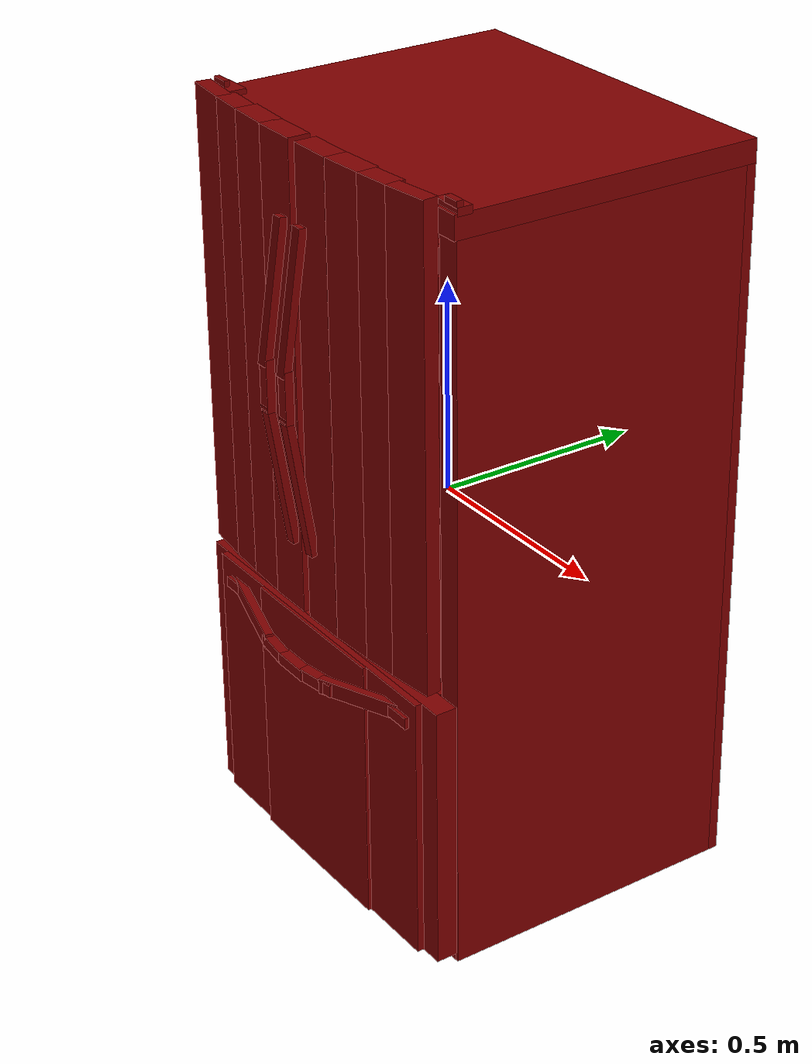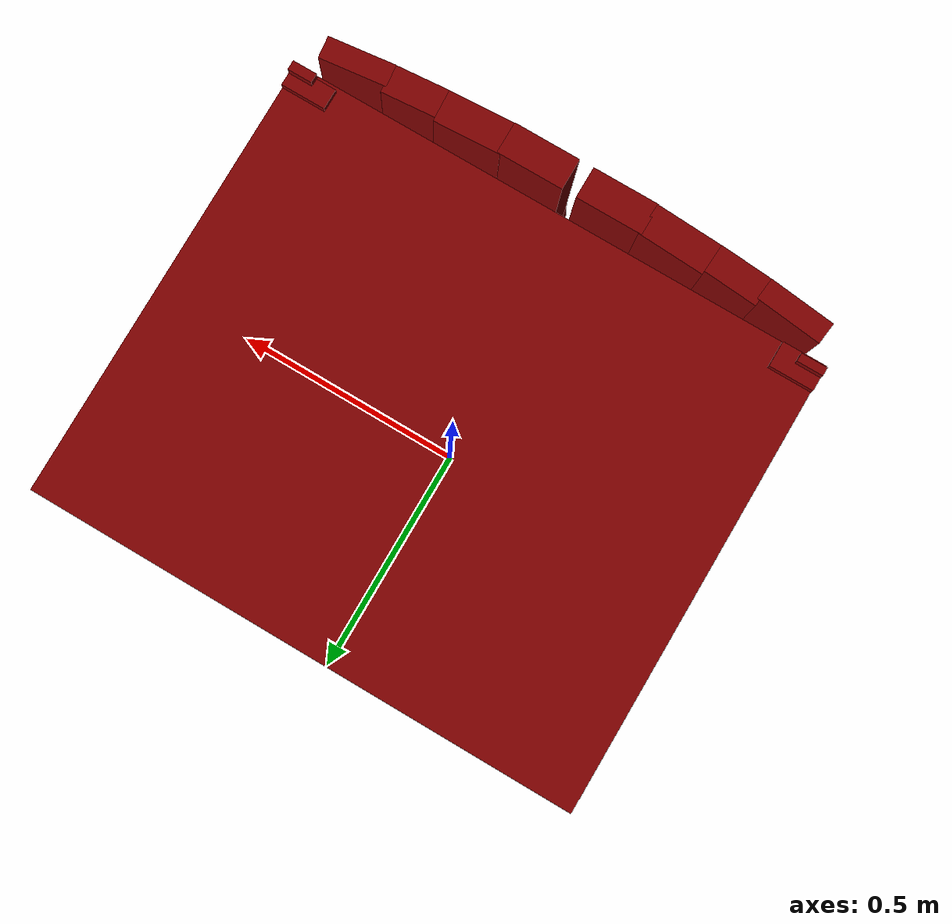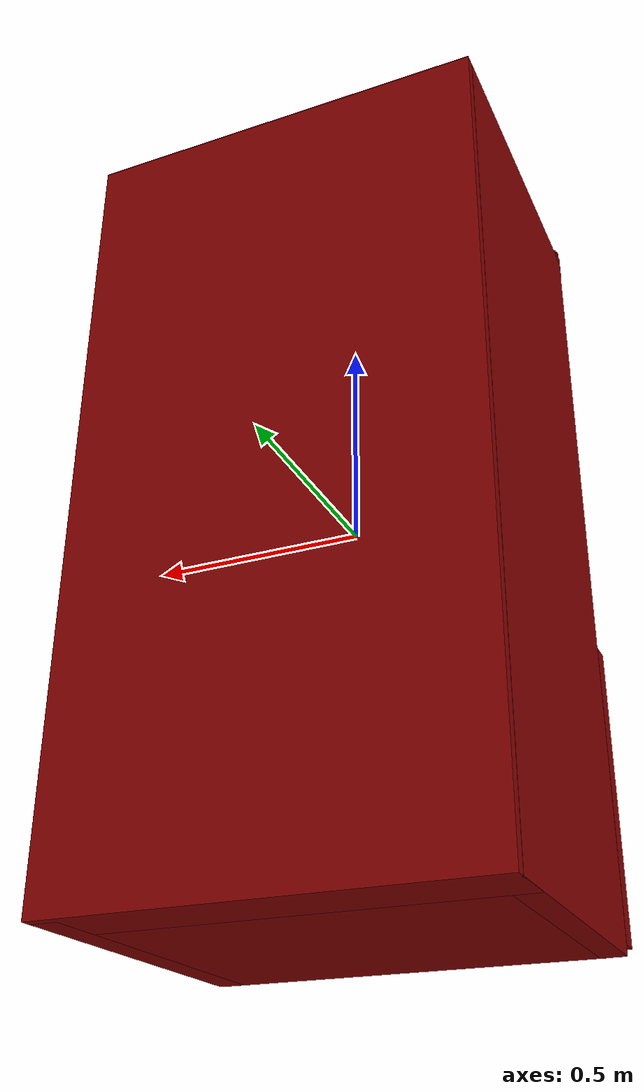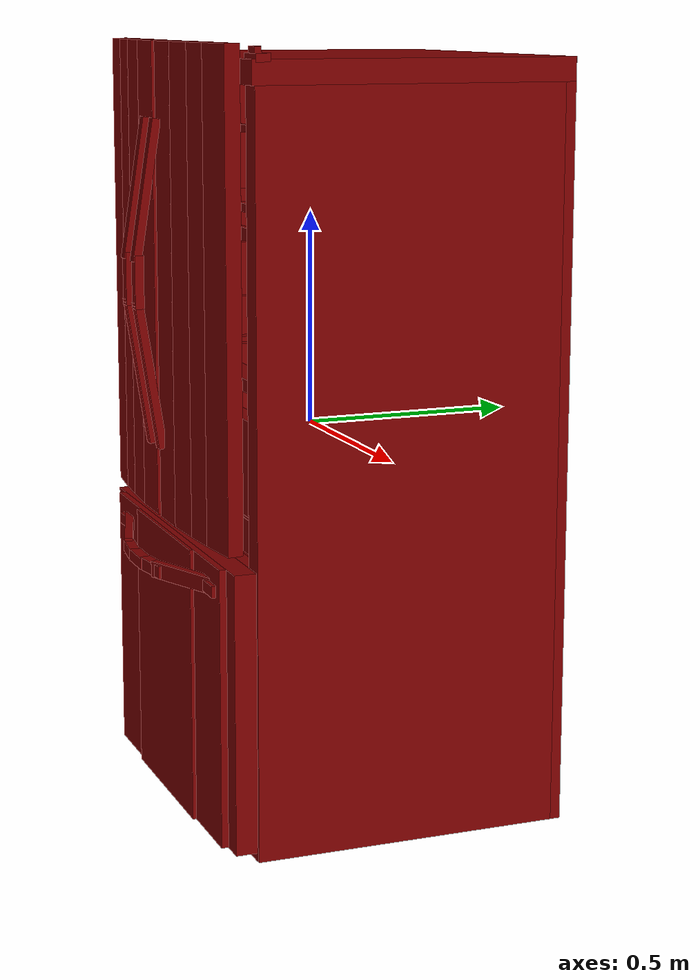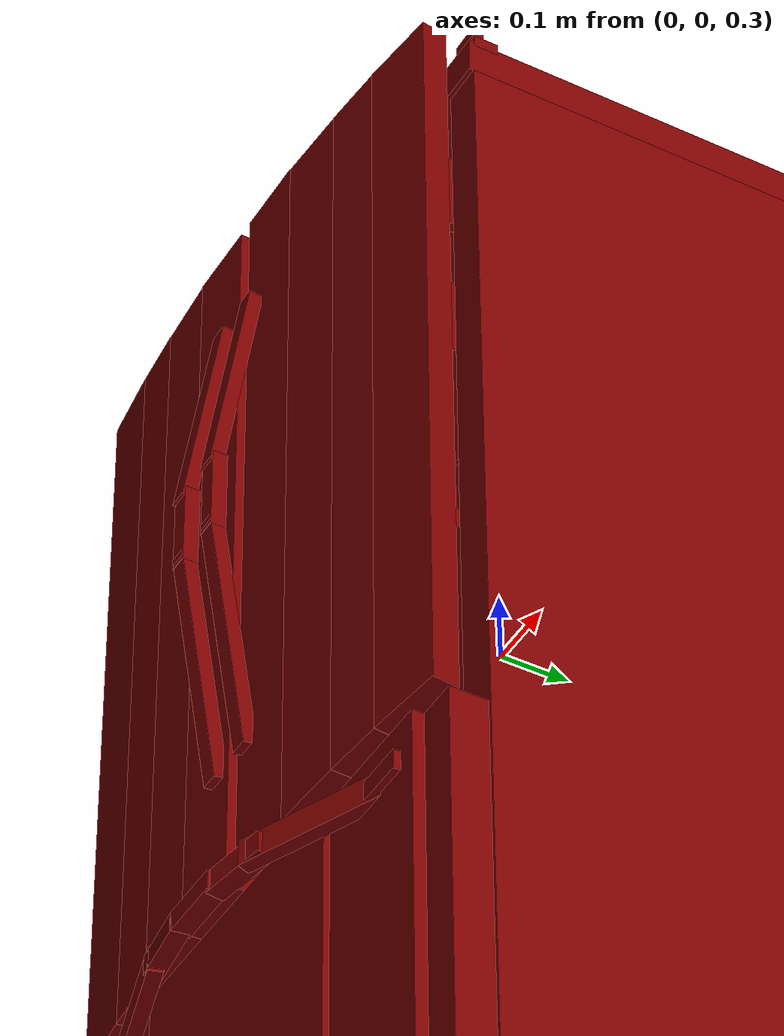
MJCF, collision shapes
<mujoco model="model">
  <compiler angle="radian"/>
  <asset>
    <mesh file="visuals/Body001.obj" name="Body001_vis"/>
    <mesh file="visuals/Body001_Clear.obj" name="Body001_Clear_vis"/>
    <mesh file="visuals/Door001.obj" name="Door001_vis"/>
    <mesh file="visuals/Door001_Clear.obj" name="Door001_Clear_vis"/>
    <mesh file="visuals/Door002.obj" name="Door002_vis"/>
    <mesh file="visuals/Door002_Clear.obj" name="Door002_Clear_vis"/>
    <mesh file="visuals/Drawer001.obj" name="Drawer001_vis"/>
    <mesh file="visuals/Drawer002.obj" name="Drawer002_vis"/>
    <texture file="visuals/T_BC001.png" name="Body001_material" type="2d"/>
    <material name="Body001_material" rgba="1 1 1 1.0" texture="Body001_material" shininess="0.5" specular="0.5"/>
    <texture file="visuals/T_BC001.png" name="Body001_Clear_material" type="2d"/>
    <material name="Body001_Clear_material" rgba="1 1 1 0.4285714030265808" texture="Body001_Clear_material" shininess="0.2512328028678894" specular="0.3103448502657381"/>
    <texture file="visuals/T_BC001.png" name="Door001_material" type="2d"/>
    <material name="Door001_material" rgba="1 1 1 1.0" texture="Door001_material" shininess="0.5" specular="0.5"/>
    <texture file="visuals/T_BC001.png" name="Door001_Clear_material" type="2d"/>
    <material name="Door001_Clear_material" rgba="1 1 1 0.4285714030265808" texture="Door001_Clear_material" shininess="0.2512328028678894" specular="0.3103448502657381"/>
    <texture file="visuals/T_BC001.png" name="Door002_material" type="2d"/>
    <material name="Door002_material" rgba="1 1 1 1.0" texture="Door002_material" shininess="0.5" specular="0.5"/>
    <texture file="visuals/T_BC001.png" name="Door002_Clear_material" type="2d"/>
    <material name="Door002_Clear_material" rgba="1 1 1 0.4285714030265808" texture="Door002_Clear_material" shininess="0.2512328028678894" specular="0.3103448502657381"/>
    <texture file="visuals/T_BC001.png" name="Drawer001_material" type="2d"/>
    <material name="Drawer001_material" rgba="1 1 1 1.0" texture="Drawer001_material" shininess="0.5" specular="0.5"/>
    <texture file="visuals/T_BC001.png" name="Drawer002_material" type="2d"/>
    <material name="Drawer002_material" rgba="1 1 1 1.0" texture="Drawer002_material" shininess="0.665778249502182" specular="0.3103448502657381"/>
  </asset>
  <default>
    <default class="visual">
      <geom conaffinity="0" contype="0" group="1" type="mesh"/>
    </default>
    <default class="collision">
      <geom group="0" rgba="0.5 0 0 0.5"/>
    </default>
    <default class="spawn">
      <geom group="0" rgba="1 1 1 0.5" contype="0" conaffinity="0"/>
      <site group="0" rgba="1 1 1 0.5"/>
    </default>
    <default class="region">
      <geom group="1" conaffinity="0" contype="0" rgba="0 1 0 0"/>
    </default>
  </default>
  <worldbody>
    <body>
      <body name="object">
        <geom mesh="Body001_vis" type="mesh" solimp="0.998 0.998 0.001" solref="0.001 1" density="100" friction="0.95 0.3 0.1" class="visual" material="Body001_material"/>
        <geom class="collision" type="box" pos="0.393358 0.157703 0.468812" size="0.010351382195949554 0.16923801600933075 0.010351382195949554" quat="1.0 0.0 0.0 0.0"/>
        <geom class="collision" type="box" pos="-0.398244 0.157703 0.468811" size="0.010351382195949554 0.16923774778842926 0.010351382195949554" quat="1.0 0.0 0.0 0.0"/>
        <geom class="collision" type="box" pos="0.380663 0.028544 -0.002299" size="0.01822734624147415 0.2875395715236664 0.1552017778158188" quat="1.0 0.0 0.0 0.0"/>
        <geom class="collision" type="box" pos="-0.329893 0.157703 0.659218" size="0.07471196353435516 0.16921715438365936 0.1444089263677597" quat="1.0 0.0 0.0 0.0"/>
        <geom class="collision" type="box" pos="-0.419443 -0.276386 0.865173" size="0.03675774484872818 0.021100489422678947 0.009076273068785667" quat="1.0 0.0 0.0 0.0"/>
        <geom class="collision" type="box" pos="-0.434253 -0.284863 0.881066" size="0.021508796140551567 0.006980355363339186 0.007224912289530039" quat="1.0 0.0 0.0 0.0"/>
        <geom class="collision" type="box" pos="0.417883 -0.274699 0.865173" size="0.03708718717098236 0.017112594097852707 0.009076273068785667" quat="1.0 0.0 0.0 0.0"/>
        <geom class="collision" type="box" pos="0.434580 -0.286291 0.881066" size="0.02038951776921749 0.007852268405258656 0.007224912289530039" quat="1.0 0.0 0.0 0.0"/>
        <geom class="collision" type="box" pos="0.011870 0.065716 -0.878961" size="0.43579548597335815 0.36065641045570374 0.016081569716334343" quat="1.0 0.0 0.0 0.0"/>
        <geom class="collision" type="box" pos="-0.000409 0.075182 0.835169" size="0.4552483856678009 0.3750923275947571 0.026853106915950775" quat="1.0 0.0 0.0 0.0"/>
        <geom class="collision" type="box" pos="0.011870 0.088161 -0.198455" size="0.43579548597335815 0.33821165561676025 0.04111609607934952" quat="1.0 0.0 0.0 0.0"/>
        <geom class="collision" type="box" pos="-0.000466 0.378528 -0.017953" size="0.4552538990974426 0.07208621501922607 0.8770899772644043" quat="1.0 0.0 0.0 0.0"/>
        <geom class="collision" type="box" pos="0.425648 0.066225 -0.017304" size="0.029170408844947815 0.36014673113822937 0.8777389526367188" quat="1.0 0.0 0.0 0.0"/>
        <geom class="collision" type="box" pos="-0.429102 0.066742 -0.017304" size="0.02709752880036831 0.35963016748428345 0.8777389526367188" quat="1.0 0.0 0.0 0.0"/>
        <geom class="collision" type="box" pos="-0.386428 0.028544 -0.002299" size="0.01822734624147415 0.2875441312789917 0.1552017778158188" quat="1.0 0.0 0.0 0.0"/>
        <body name="Body001_Clear">
          <geom mesh="Body001_Clear_vis" type="mesh" solimp="0.998 0.998 0.001" solref="0.001 1" density="100" friction="0.95 0.3 0.1" class="visual" material="Body001_Clear_material"/>
          <geom class="collision" type="box" pos="-0.002334 0.168107 0.165342" size="0.3946961760520935 0.1715097725391388 0.010541661642491817" quat="1.0 0.0 0.0 0.0"/>
          <geom class="collision" type="box" pos="-0.002334 0.144625 0.480483" size="0.394689679145813 0.19498831033706665 0.010541456751525402" quat="1.0 0.0 0.0 0.0"/>
        </body>
        <body name="Door001">
          <joint axis="0.0 0.0 1.0" pos="0.414416 -0.337326 0.348534" limited="true" name="Door001_joint" range="0.0 1.5707963267948966" type="hinge" damping="1" frictionloss="1" armature=".01" stiffness="0.05"/>
          <geom mesh="Door001_vis" type="mesh" solimp="0.998 0.998 0.001" solref="0.001 1" density="100" friction="0.95 0.3 0.1" class="visual" material="Door001_material"/>
          <geom class="collision" type="box" pos="0.034764 -0.430729 0.357518" size="0.013605616986751556 0.010502235032618046 0.06091376394033432" quat="1.0 0.0 0.0 0.0"/>
          <geom class="collision" type="box" pos="0.034647 -0.410058 0.563384" size="0.1621246635913849 0.009660408832132816 0.013486583717167377" quat="0.7049456238746643 -0.05524139851331711 -0.7049456834793091 0.05524139851331711"/>
          <geom class="collision" type="box" pos="0.034627 -0.406367 0.140931" size="0.17270001769065857 0.009615455754101276 0.013239248655736446" quat="0.7050025463104248 0.05450979247689247 -0.7050026655197144 -0.05450979247689247"/>
          <geom class="collision" type="box" pos="0.065737 -0.351168 0.348108" size="0.055616579949855804 0.026242488995194435 0.5461543202400208" quat="1.0 0.0 0.0 0.0"/>
          <geom class="collision" type="box" pos="0.272572 -0.343936 0.348108" size="0.046391285955905914 0.02346332184970379 0.5461505651473999" quat="0.9991945028305054 0.0 0.0 0.04012879356741905"/>
          <geom class="collision" type="box" pos="0.172865 -0.347481 0.348108" size="0.055616192519664764 0.026242297142744064 0.546151340007782" quat="0.9996211528778076 0.0 0.0 0.027522815391421318"/>
          <geom class="collision" type="box" pos="0.370576 -0.339621 0.348108" size="0.05561620369553566 0.01822243444621563 0.546151340007782" quat="0.9983311295509338 0.0 0.0 0.05774902552366257"/>
          <body name="Door001_Clear">
            <geom mesh="Door001_Clear_vis" type="mesh" solimp="0.998 0.998 0.001" solref="0.001 1" density="100" friction="0.95 0.3 0.1" class="visual" material="Door001_Clear_material"/>
            <geom class="collision" type="box" pos="0.217419 -0.196417 0.423626" size="0.17540806531906128 0.007096310146152973 0.056383147835731506" quat="1.0 0.0 0.0 0.0"/>
            <geom class="collision" type="box" pos="0.047978 -0.253402 0.423566" size="0.007609921041876078 0.05415037274360657 0.056323058903217316" quat="1.0 0.0 0.0 0.0"/>
            <geom class="collision" type="box" pos="0.385024 -0.253401 0.423745" size="0.008308866992592812 0.05414876714348793 0.05650128424167633" quat="1.0 0.0 0.0 0.0"/>
            <geom class="collision" type="box" pos="0.216939 -0.251529 0.370284" size="0.1758868247270584 0.056109968572854996 0.005093726795166731" quat="1.0 0.0 0.0 0.0"/>
            <geom class="collision" type="box" pos="0.214233 -0.195037 0.651478" size="0.17222079634666443 0.005250070244073868 0.05818304046988487" quat="1.0 0.0 0.0 0.0"/>
            <geom class="collision" type="box" pos="0.047882 -0.254213 0.651478" size="0.007706339471042156 0.05394796282052994 0.05818280950188637" quat="1.0 0.0 0.0 0.0"/>
            <geom class="collision" type="box" pos="0.380341 -0.254213 0.651478" size="0.006518768146634102 0.05394766852259636 0.05818257853388786" quat="1.0 0.0 0.0 0.0"/>
            <geom class="collision" type="box" pos="0.213753 -0.254213 0.601259" size="0.17269954085350037 0.05394737049937248 0.007710074074566364" quat="1.0 0.0 0.0 0.0"/>
          </body>
        </body>
        <body name="Door002">
          <joint axis="0.0 0.0 -1.0" pos="-0.414856 -0.337479 0.348534" limited="true" name="Door002_joint" range="0.0 1.5707963267948966" type="hinge" damping="1" frictionloss="1" armature=".01" stiffness="0.05"/>
          <geom mesh="Door002_vis" type="mesh" solimp="0.998 0.998 0.001" solref="0.001 1" density="100" friction="0.95 0.3 0.1" class="visual" material="Door002_material"/>
          <geom class="collision" type="box" pos="-0.039493 -0.406367 0.140931" size="0.17270001769065857 0.009615455754101276 0.013239248655736446" quat="0.7050025463104248 0.05450979247689247 -0.7050026655197144 -0.05450979247689247"/>
          <geom class="collision" type="box" pos="-0.039473 -0.410058 0.563384" size="0.1621246635913849 0.009660408832132816 0.013486583717167377" quat="0.7049456238746643 -0.05524139851331711 -0.7049456834793091 0.05524139851331711"/>
          <geom class="collision" type="box" pos="-0.039356 -0.430729 0.357518" size="0.013605616986751556 0.010502469725906849 0.060914814472198486" quat="1.0 0.0 0.0 0.0"/>
          <geom class="collision" type="box" pos="-0.374019 -0.339621 0.348108" size="0.05561620369553566 0.01822243444621563 0.546151340007782" quat="-4.363844041677112e-08 -0.9983311295509338 0.05774901434779167 2.5242896661836767e-09"/>
          <geom class="collision" type="box" pos="-0.176309 -0.347481 0.348108" size="0.055616192519664764 0.026242297142744064 0.546151340007782" quat="-4.369483264099472e-08 -0.9996211528778076 0.02752281166613102 1.203060318033522e-09"/>
          <geom class="collision" type="box" pos="-0.276016 -0.343936 0.348108" size="0.046391285955905914 0.02346332184970379 0.5461505651473999" quat="-4.3676180894181016e-08 -0.9991945028305054 0.04012879356741905 1.75408532143706e-09"/>
          <geom class="collision" type="box" pos="-0.069181 -0.351168 0.348108" size="0.05561621114611626 0.026242351159453392 0.5461513996124268" quat="1.0 0.0 0.0 0.0"/>
          <body name="Door002_Clear">
            <geom mesh="Door002_Clear_vis" type="mesh" solimp="0.998 0.998 0.001" solref="0.001 1" density="100" friction="0.95 0.3 0.1" class="visual" material="Door002_Clear_material"/>
            <geom class="collision" type="box" pos="-0.302869 -0.228773 0.624898" size="0.09465435147285461 0.0052499896846711636 0.04907779395580292" quat="1.0 0.0 0.0 0.0"/>
            <geom class="collision" type="box" pos="-0.121150 -0.257943 0.579905" size="0.07614818960428238 0.05610897019505501 0.005093674641102552" quat="1.0 0.0 0.0 0.0"/>
            <geom class="collision" type="box" pos="-0.050227 -0.259815 0.625439" size="0.005737243220210075 0.05414760485291481 0.04857071116566658" quat="1.0 0.0 0.0 0.0"/>
            <geom class="collision" type="box" pos="-0.192696 -0.259816 0.625260" size="0.005291529931128025 0.05414901301264763 0.04839230701327324" quat="1.0 0.0 0.0 0.0"/>
            <geom class="collision" type="box" pos="-0.120670 -0.202831 0.625320" size="0.07566859573125839 0.0070961154997348785 0.04845228046178818" quat="1.0 0.0 0.0 0.0"/>
            <geom class="collision" type="box" pos="-0.302552 -0.275040 0.583782" size="0.09433573484420776 0.04103604331612587 0.007709970232099295" quat="1.0 0.0 0.0 0.0"/>
            <geom class="collision" type="box" pos="-0.214322 -0.275040 0.624898" size="0.006518608424812555 0.04103619232773781 0.049077168107032776" quat="1.0 0.0 0.0 0.0"/>
            <geom class="collision" type="box" pos="-0.390065 -0.275040 0.624898" size="0.007706147618591785 0.04103634133934975 0.049077216535806656" quat="1.0 0.0 0.0 0.0"/>
          </body>
        </body>
        <body name="Drawer001">
          <joint axis="0.0 -1.0 0.0" pos="0.000373 -0.047980 -0.544137" limited="true" name="Drawer001_joint" range="0.0 0.5" type="slide" damping="1" frictionloss="1" armature=".01" stiffness="0.05"/>
          <geom mesh="Drawer001_vis" type="mesh" solimp="0.998 0.998 0.001" solref="0.001 1" density="100" friction="0.95 0.3 0.1" class="visual" material="Drawer001_material"/>
          <geom class="collision" type="box" pos="-0.002141 -0.279196 -0.521038" size="0.3885945677757263 0.019925406202673912 0.2845621109008789" quat="1.0 0.0 0.0 0.0"/>
          <geom class="collision" type="box" pos="-0.001812 0.288623 -0.585508" size="0.3879283666610718 0.009211345575749874 0.19583235681056976" quat="1.0 0.0 0.0 0.0"/>
          <geom class="collision" type="box" pos="-0.378736 0.004594 -0.582278" size="0.01699790172278881 0.29057618975639343 0.19446773827075958" quat="1.0 0.0 0.0 0.0"/>
          <geom class="collision" type="box" pos="0.377749 0.004594 -0.583345" size="0.015180880203843117 0.29057541489601135 0.1934172660112381" quat="1.0 0.0 0.0 0.0"/>
          <geom class="collision" type="box" pos="0.001919 -0.059073 -0.794773" size="0.3915984034538269 0.22829650342464447 0.023482302203774452" quat="1.0 0.0 0.0 0.0"/>
          <geom class="collision" type="box" pos="-0.000546 0.004594 -0.625991" size="0.014605643227696419 0.2905741333961487 0.1514507383108139" quat="1.0 0.0 0.0 0.0"/>
          <geom class="collision" type="box" pos="-0.047161 -0.433776 -0.286735" size="0.04609515517950058 0.011889252811670303 0.013330944813787937" quat="0.998010516166687 0.0 0.0 -0.06304814666509628"/>
          <geom class="collision" type="box" pos="0.233474 -0.393942 -0.285232" size="0.10117261111736298 0.009400229901075363 0.018201885744929314" quat="0.9800581336021423 0.0 0.0 0.19871099293231964"/>
          <geom class="collision" type="box" pos="-0.206991 -0.394455 -0.285254" size="0.13687340915203094 0.009747722186148167 0.018304292112588882" quat="0.9899300932884216 0.0 0.0 -0.1415572613477707"/>
          <geom class="collision" type="box" pos="-0.000428 -0.322131 -0.551511" size="0.45522984862327576 0.02527734450995922 0.32037287950515747" quat="1.0 0.0 0.0 0.0"/>
          <geom class="collision" type="box" pos="0.000326 -0.341632 -0.551511" size="0.40009358525276184 0.021706128492951393 0.32037144899368286" quat="1.0 0.0 0.0 0.0"/>
          <geom class="collision" type="box" pos="0.000349 -0.349846 -0.551511" size="0.21344634890556335 0.0217059887945652 0.3203692138195038" quat="1.0 0.0 0.0 0.0"/>
          <geom class="collision" type="box" pos="0.040544 -0.438078 -0.286735" size="0.04640457034111023 0.013151935301721096 0.013330944813787937" quat="1.0 0.0 0.0 0.0"/>
          <geom class="collision" type="box" pos="0.126043 -0.429253 -0.286735" size="0.04938306659460068 0.012737303972244263 0.014281831681728363" quat="0.9971693754196167 0.0 0.0 0.07518839091062546"/>
          <geom class="collision" type="box" pos="0.328591 -0.359474 -0.286353" size="0.046404555439949036 0.013151935301721096 0.013330944813787937" quat="1.0 0.0 0.0 0.0"/>
          <geom class="collision" type="box" pos="-0.318499 -0.359474 -0.286353" size="0.04640458524227142 0.013151935301721096 0.013330944813787937" quat="1.0 0.0 0.0 0.0"/>
          <geom class="collision" type="box" pos="-0.001381 0.235246 -0.793529" size="0.3883514106273651 0.06288252770900726 0.008910532109439373" quat="1.0 0.0 0.0 0.0"/>
        </body>
        <body name="Drawer002">
          <joint axis="0.0 -1.0 0.0" pos="-0.003428 0.041998 -0.008035" limited="true" name="Drawer002_joint" range="0.0 0.5" type="slide" damping="1" frictionloss="1" armature=".01" stiffness="0.05"/>
          <geom mesh="Drawer002_vis" type="mesh" solimp="0.998 0.998 0.001" solref="0.001 1" density="100" friction="0.95 0.3 0.1" class="visual" material="Drawer002_material"/>
          <geom class="collision" type="box" pos="0.339686 0.014974 -0.006031" size="0.017178663983941078 0.27397421002388 0.1471763253211975" quat="1.0 0.0 0.0 0.0"/>
          <geom class="collision" type="box" pos="-0.344523 0.014974 -0.006031" size="0.017178663983941078 0.27397421002388 0.1471763253211975" quat="1.0 0.0 0.0 0.0"/>
          <geom class="collision" type="box" pos="-0.003302 0.014974 -0.150088" size="0.3272859752178192 0.2739746868610382 0.0031187348067760468" quat="1.0 0.0 0.0 0.0"/>
          <geom class="collision" type="box" pos="-0.003302 -0.236693 -0.038120" size="0.32728663086891174 0.022307263687253 0.1096319928765297" quat="1.0 0.0 0.0 0.0"/>
          <geom class="collision" type="box" pos="-0.003302 0.284464 -0.004656" size="0.32728663086891174 0.010801659896969795 0.14309607446193695" quat="1.0 0.0 0.0 0.0"/>
          <geom class="collision" type="box" pos="-0.003672 -0.184266 0.125242" size="0.3303123414516449 0.033072683960199356 0.01529338862746954" quat="1.0 0.0 0.0 0.0"/>
        </body>
        <geom class="region" name="reg_main" type="box" pos="-0.0006154999999999911 0.03641 0.0" size="0.4555845 0.414204 0.895043"/>
      </body>
    </body>
  </worldbody>
  <actuator>
    <motor name="Door001_joint_actuator" joint="Door001_joint" gear="50"/>
    <motor name="Door002_joint_actuator" joint="Door002_joint" gear="50"/>
    <motor name="Drawer001_joint_actuator" joint="Drawer001_joint" gear="50"/>
    <motor name="Drawer002_joint_actuator" joint="Drawer002_joint" gear="50"/>
  </actuator>
</mujoco>
